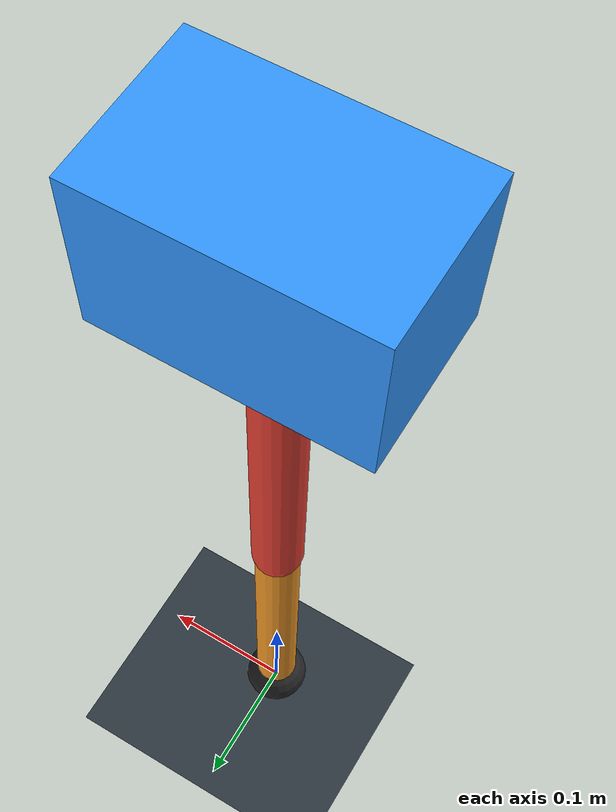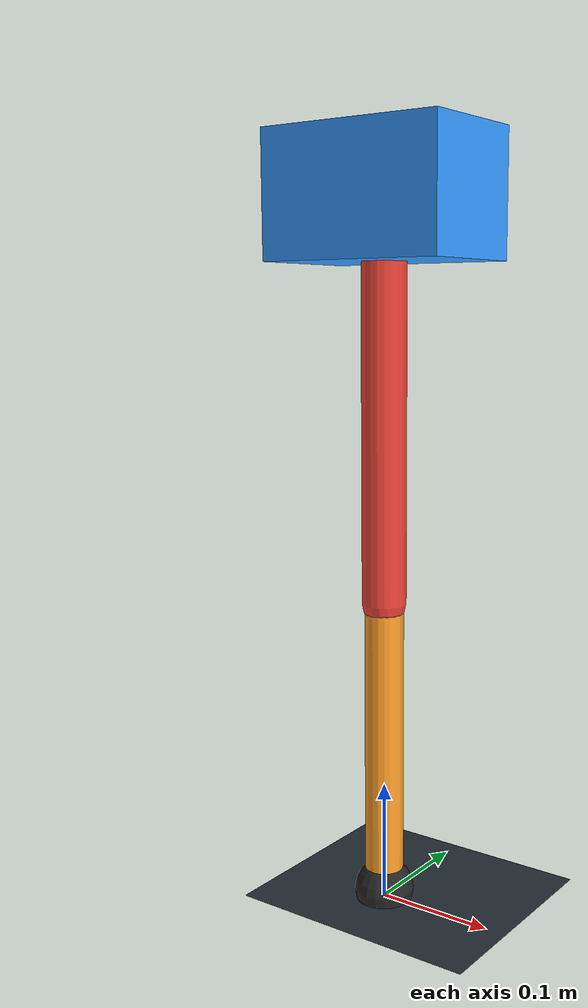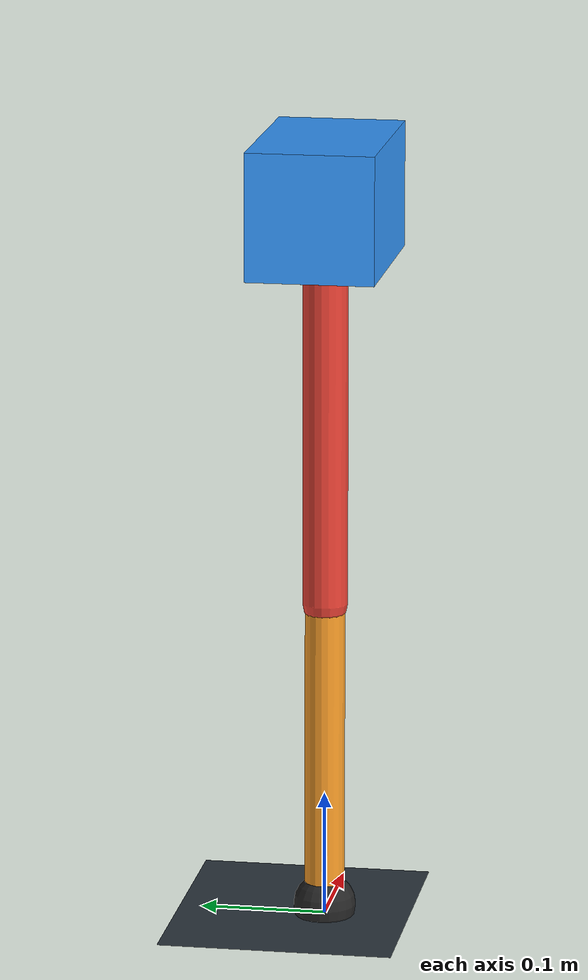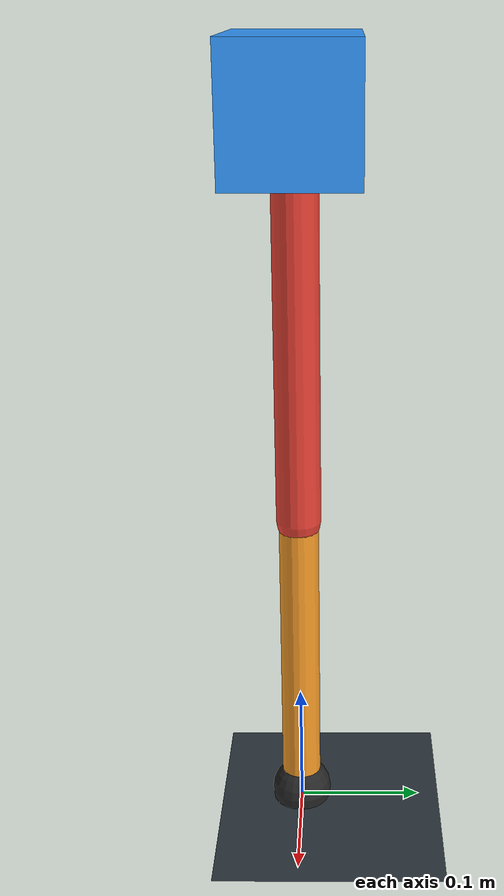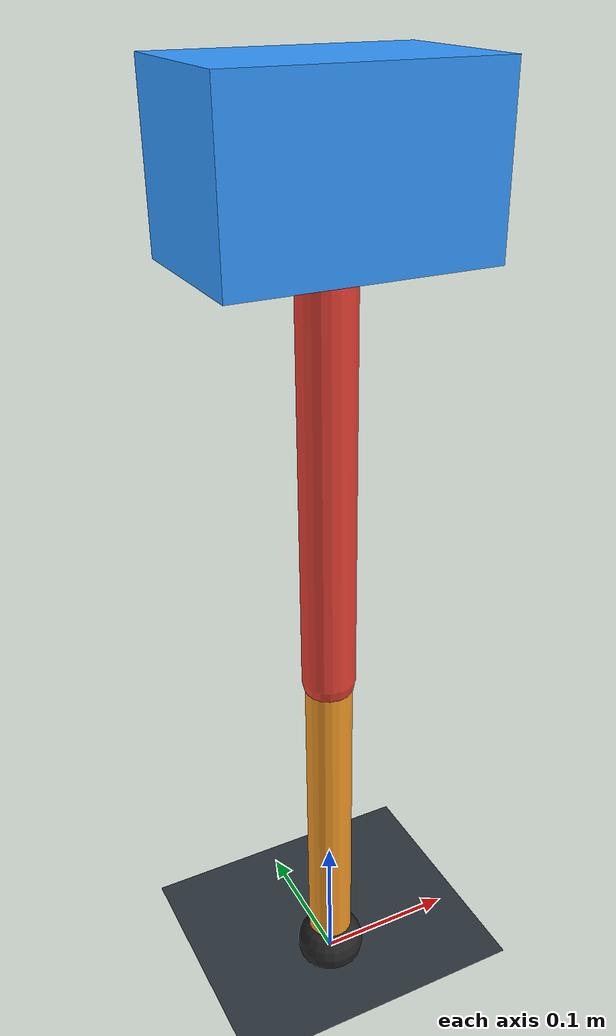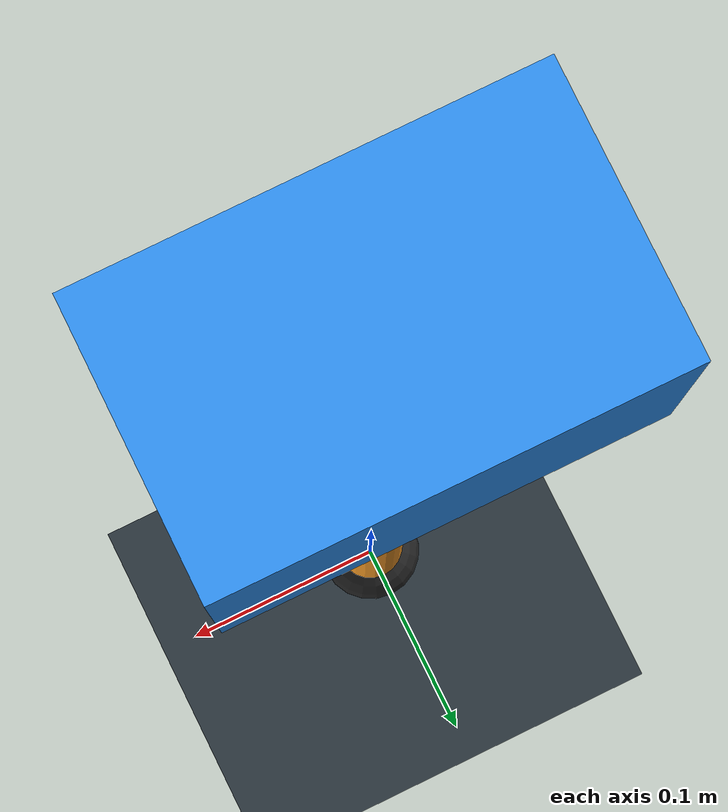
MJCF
<mujoco model="single_axis_two_bar">
  <compiler angle="radian" inertiafromgeom="true"/>
  <option timestep="0.001" integrator="implicitfast" gravity="0 0 -9.81"/>
  <default>
    <joint damping="0.08"/>
    <geom friction="1.2 0.01 0.0001" condim="3"/>
  </default>
  <worldbody>
    <geom name="floor" type="plane" size="5 5 0.1" rgba="0.18 0.22 0.25 1"/>
    <body name="carriage" pos="0 0 0.5790620889649823">
      <joint name="pole_slide" type="slide" axis="0 0 1"/>
      <geom name="payload" type="box" size="0.08 0.05 0.05" mass="3.616260449682953" rgba="0.2 0.6 1 1"/>
      <body name="thigh" pos="0 0 0">
        <joint name="hip" type="hinge" axis="0 1 0"/>
        <geom name="thigh_link" type="capsule" fromto="0 0 0 0 0 -0.3224089459256532" size="0.018" mass="0.22972063423037273" rgba="0.9 0.25 0.2 1"/>
        <body name="shank" pos="0 0 -0.3224089459256532">
          <joint name="knee" type="hinge" axis="0 1 0"/>
          <geom name="shank_link" type="capsule" fromto="0 0 0 0 0 -0.24878908393515337" size="0.016" mass="0.17726550976149397" rgba="0.95 0.6 0.15 1"/>
          <geom name="foot" type="sphere" pos="0 0 -0.24878908393515337" size="0.025" mass="0.03" rgba="0.15 0.15 0.15 1"/>
          <site name="toe" pos="0 0 -0.24878908393515337" size="0.008"/>
        </body>
      </body>
    </body>
  </worldbody>
  <actuator>
    <motor name="hip_motor" joint="hip" ctrlrange="-54.439204906995215 54.439204906995215"/>
    <motor name="knee_motor" joint="knee" ctrlrange="-159.4297825035562 159.4297825035562"/>
  </actuator>
</mujoco>
